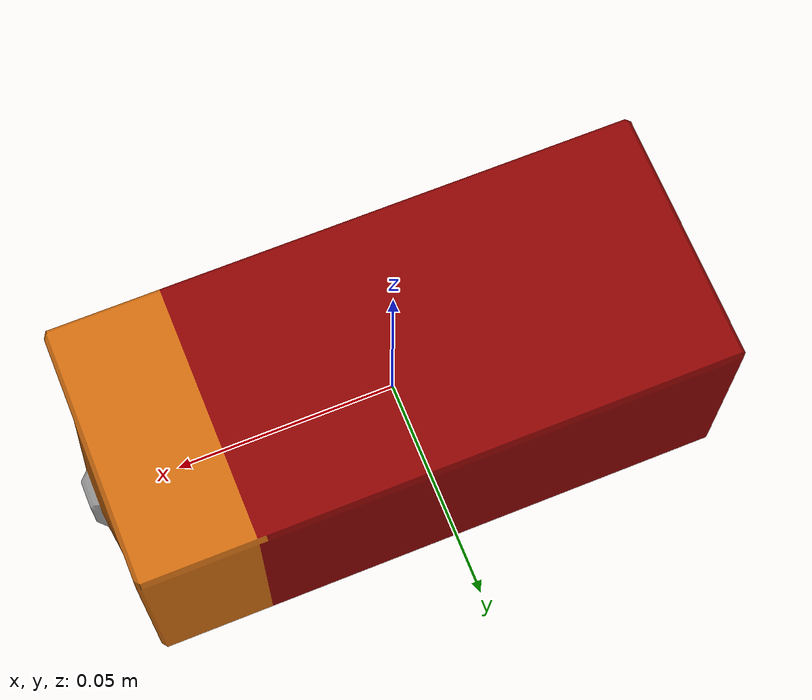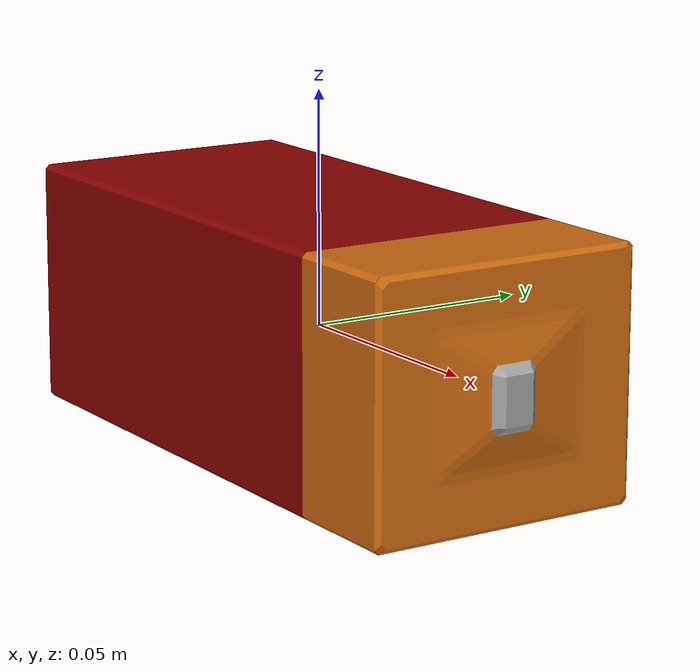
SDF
<?xml version="1.0" ?>
<sdf version="1.6">
  <model name="assembly_battery_red_ariac">
    <static>false</static>
    <link name="link">
      <inertial>
        <pose>0 0 0.0004 0 0 0</pose>
        <mass>0.5</mass>
        <inertia>
          <ixx>0.0009</ixx>
          <ixy>0</ixy>
          <ixz>0</ixz>
          <iyy>0.0009</iyy>
          <iyz>0</iyz>
          <izz>0.0009</izz>
        </inertia>
      </inertial>
      <collision name='collision'>
        <pose frame=''>0 0 0 0 0 0</pose>
        <geometry>
            <mesh>
            <uri>model://assembly_battery_blue_ariac/meshes/assembly_battery.stl</uri>
            <scale>0.98 1.0 1.0</scale>
            </mesh>
          </geometry>
        <surface>
          <contact>
            <ode>
              <max_vel>0.1</max_vel>
              <min_depth>0.001</min_depth>
            </ode>
          </contact>
        </surface>
      </collision>
      <visual name="visual">
         <geometry>
           <mesh>
             <uri>model://assembly_battery_red_ariac/meshes/battery_part_red.dae</uri>
            <scale>0.98 1.0 1.0</scale>
           </mesh>
         </geometry>
       </visual>
    </link>
  </model>
</sdf>
